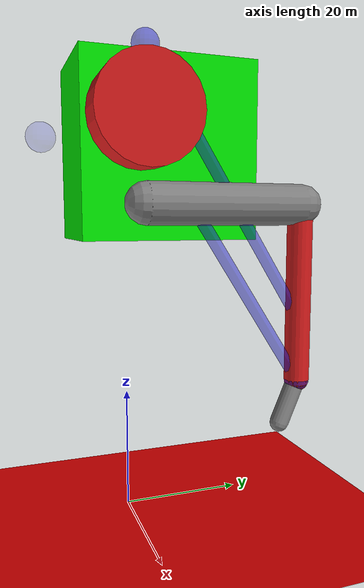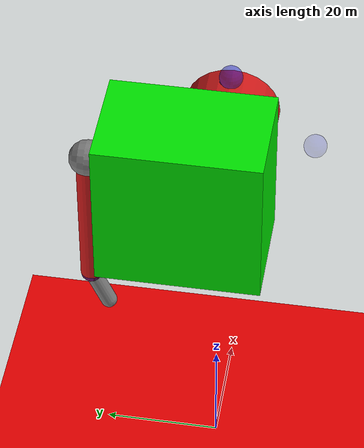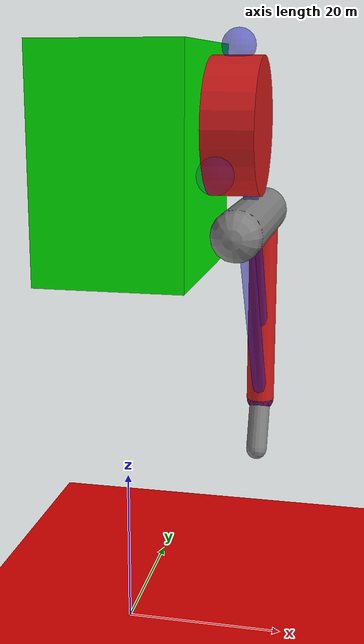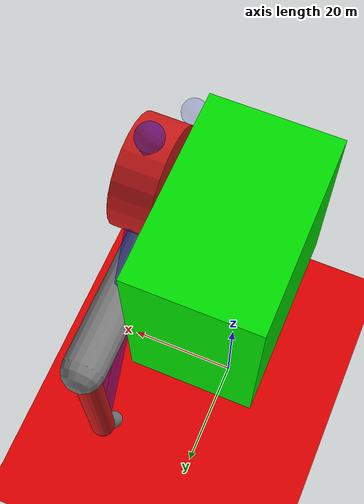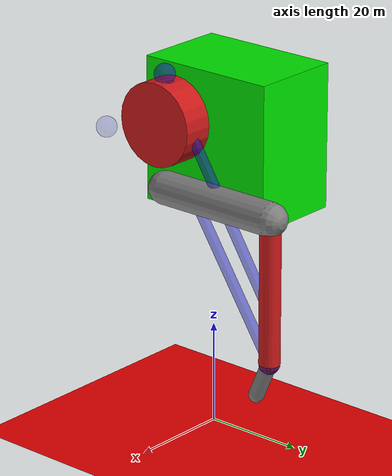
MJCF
<mujoco>

    <compiler angle="degree"/>

    <asset>
        <texture type="skybox" builtin="gradient" rgb1="1 1 1" rgb2=".6 .8 1" width="256" height="256"/>
    </asset>

    <option gravity="0 0 -9810"/>

    <!-- IMPORTANT LEG PARAMETERS FOR MODELS -->
    <!-- lr0= 0.46, l1=0.025, l2=0.018, l3=0.028, l4=0.015, rp=0.008, d1=0.0218 -->

    <worldbody>
        <light diffuse="0.5 0.5 0.5" pos="0 0 300" dir="0 0 -1"/>
        <geom type="plane" size="100 100 0.1" rgba=".9 0 0 1"/>
        <camera name="body_cam" mode="fixed" pos="0.2 -0.01 0.05" euler="90 90 0"/>
        <body pos="0 5.5 60">
            <geom name="main_box" mass="40" type="box" size="9.1 14 14" rgba="0 .9 0 1"/>

            <!-- Extension with slider for jumping -->
            <joint name="rail" type="slide" axis="0 0 1" pos="0 0 0" damping="0.1" limited="true" range="-20 10"/>
            <joint name="rail2" type="slide" axis="0 1 0" damping=".1" frictionloss="10000" pos="0 0 0"/>
            <body name ="main_leg" pos="13.6 -5.5 -8.5">

                <joint name="m1" pos="0 0 0" type="hinge" axis="1 0 0" range="-180 180" ref="90" damping="50000"/>
                <geom name="leg1" mass="1" type="capsule" fromto="0 0 0 0 25 0" size="3.2"/>
                <site name="knee_start" pos="0 6.8 0" size="2" rgba=".1 .1 .8 0.5"/>
                <body name="lower_leg" pos="0 25 0">
                    <joint name="knee1" pos="0 0 0" type="hinge" axis="1 0 0" limited="true" range="-90 90" damping="50000"/>
                    <geom name="leg2" type="capsule" mass="1.5" fromto="0 0 0 0 0 -28" size="2" rgba=".8 .1 .1 1"/>
                    <geom name="foot" type="capsule" mass="1" fromto="0 0 -28 0 -3 -35" size="1.5"/>
                    <site name="m2_pickup" pos="0 0 -18" size="2" rgba=".1 .1 .8 0.5"/>
                    <site name="knee_pickup" pos="0 0 -28" size="2" rgba=".1 .1 .8 0.5"/>
                    <site name="ankle_start" pos="0 0 -10" size="2" rgba=".1 .1 .8 0.5"/>
                </body>
            </body>

            <site name="x1" pos="13.6 -20.0 0.00" size="2" rgba=".1 .1 .8 0.2"/>
            <body name="servo2" pos="13.6 -5.5 4.3">
                <geom name="motor2" type="cylinder" mass="2" fromto="-3 0 0 3 0 0" size="8" rgba=".8 .1 .1 1" />
                <joint name="m2" pos="0 0 0" type="hinge" axis="1 0 0" limited="true" range="-180 180" damping="50000"/>

                <site name="s1" pos="0 0 9" size="2" rgba=".1 .1 .8 0.5"/>
            </body>
        </body>
    </worldbody>

    <contact>
        <exclude body1="main_leg" body2="servo2"/>
    </contact>

    <tendon>
        <spatial name="m2_tendon" limited="true" range="0 58.7" width="1" rgba=".1 .1 .8 0.5">
            <site site="s1"/>
            <geom geom="motor2" sidesite="x1"/>
            <site site="m2_pickup"/>
        </spatial>

        <!-- adjust the stiffness values of these springs -->
        <spatial name="knee_tendon" springlength="44" stiffness="80000" width="1" rgba=".1 .1 .8 0.5">
            <site site="knee_start"/>
            <site site="knee_pickup"/>
        </spatial>

    </tendon>

    <sensor>
        <!-- tendonpos name="tendon_length" tendon="m2_tendon"/-->
        <!-- framepos name="leg_endpoint" objtype="site" objname="end_point"/-->
        <jointpos name="m1" joint="m1"/>
        <jointpos name="m2" joint="m2"/>
        <actuatorfrc name="m1_f" actuator="m1"/>
        <actuatorfrc name="m2_f" actuator="m2"/>
    </sensor>

    <actuator>
        <position name="m1" gear="1" ctrllimited="true" ctrlrange="-3.00 3.00" joint="m1" kp="10000000"/>
        <position name="m2" gear="1" ctrllimited="true"  ctrlrange="-3.00 3.00 " joint="m2" kp="10000000"/>
    </actuator>
</mujoco>
